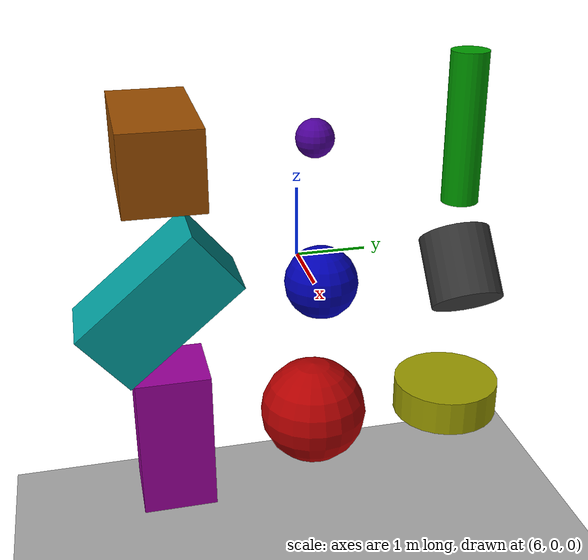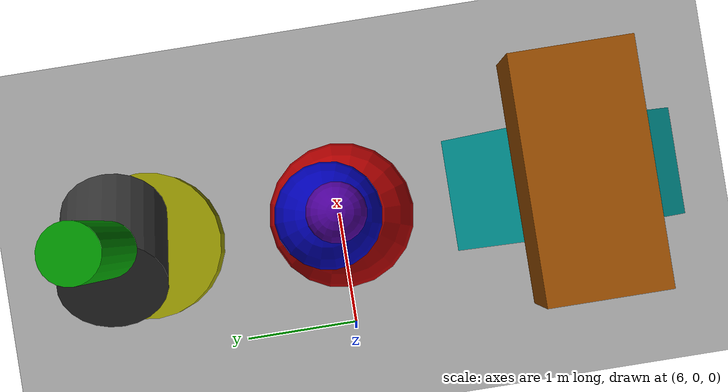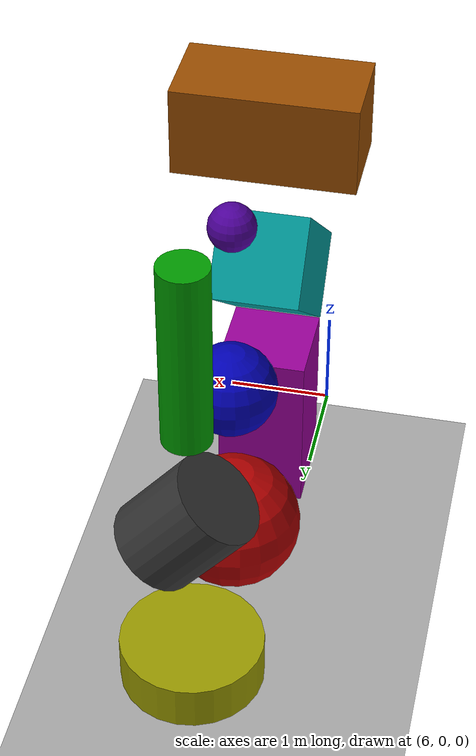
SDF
<sdf version="1.5">
 <world name="default">
  <physics type="ode">
   <real_time_factor>1.0</real_time_factor>
   <real_time_update_rate>125</real_time_update_rate>
  </physics>
  <scene><ambient>0.5 0.5 0.5 1</ambient><background>0 0 0 1</background><shadows>1</shadows></scene>
  <include><uri>model://sun</uri></include>
  <model name="north_model">
   <static>false</static>
   <link name="north_link">
    <pose>7 0 2 0 0 0</pose>
    <collision name="north_collision"><geometry><sphere><radius>0.25</radius></sphere></geometry></collision>
    <visual name="north_visual">
     <geometry><sphere><radius>0.25</radius></sphere></geometry>
     <material>
      <ambient>0.2 0.0 0.4 1</ambient>
      <diffuse>0.3 0.0 0.6 1</diffuse>
      <specular>0.5 0.5 0.5 1</specular>
     </material>
    </visual>
   </link>
  </model>
  <model name="center_model">
   <static>false</static>
   <link name="center_link">
    <pose>7 0.1 0 0 0 0</pose>
    <collision name="center_collision"><geometry><sphere><radius>0.5</radius></sphere></geometry></collision>
    <visual name="center_visual">
     <geometry><sphere><radius>0.5</radius></sphere></geometry>
     <material>
      <ambient>0.0 0.0 0.3 1</ambient>
      <diffuse>0.0 0.0 0.7 1</diffuse>
      <specular>0.5 0.5 0.5 1</specular>
     </material>
    </visual>
   </link>
  </model>
  <model name="south_model">
   <static>false</static>
   <link name="south_link">
    <pose>7 0 -2 0 0 0</pose>
    <collision name="south_collision"><geometry><sphere><radius>0.75</radius></sphere></geometry></collision>
    <visual name="south_visual">
     <geometry><sphere><radius>0.75</radius></sphere></geometry>
     <material>
      <ambient>0.3 0.0 0.0 1</ambient>
      <diffuse>0.7 0.0 0.0 1</diffuse>
      <specular>0.5 0.5 0.5 1</specular>
     </material>
    </visual>
   </link>
  </model>
  <model name="northwest_model">
   <static>false</static>
   <link name="northwest_link">
    <pose>7 2 2 0 0 0</pose>
    <collision name="northwest_collision">
     <geometry><cylinder><radius>0.25</radius><length>2</length></cylinder></geometry>
    </collision>
    <visual name="northwest_visual">
     <geometry><cylinder><radius>0.25</radius><length>2</length></cylinder></geometry>
     <material>
      <ambient>0 0.4 0 1</ambient>
      <diffuse>0 0.6 0 1</diffuse>
      <specular>0.5 0.5 0.5 1</specular>
     </material>
    </visual>
   </link>
  </model>
  <model name="west_model">
   <static>false</static>
   <link name="west_link">
    <pose>7 2.1 0 0 -0.7 0</pose>
    <collision name="west_collision">
     <geometry><cylinder><radius>0.5</radius><length>1</length></cylinder></geometry>
    </collision>
    <visual name="west_visual">
     <geometry><cylinder><radius>0.5</radius><length>1</length></cylinder></geometry>
     <material>
      <ambient>0.1 0.1 0.1 1</ambient>
      <diffuse>0.2 0.2 0.2 1</diffuse>
      <specular>0.5 0.5 0.5 1</specular>
     </material>
    </visual>
   </link>
  </model>
  <model name="southwest_model">
   <static>false</static>
   <link name="southwest_link">
    <pose>7 2 -2 0 0 0</pose>
    <collision name="southeast_collision">
     <geometry><cylinder><radius>0.75</radius><length>0.5</length></cylinder></geometry>
    </collision>
    <visual name="southwest_visual">
     <geometry><cylinder><radius>0.75</radius><length>0.5</length></cylinder></geometry>
     <material>
      <ambient>0.4 0.4 0 1</ambient>
      <diffuse>0.6 0.6 0 1</diffuse>
      <specular>0.5 0.5 0.5 1</specular>
     </material>
    </visual>
   </link>
  </model>
  <model name="northeast_model">
   <static>false</static>
   <link name="northeast_link">
    <pose>7 -2 2 0 0 0</pose>
    <collision name="southeast_collision"><geometry><box><size>2 1 1</size></box></geometry></collision>
    <visual name="northeast_visual">
     <geometry><box><size>2 1 1</size></box></geometry>
     <material>
      <ambient>0.4 0.2 0 1</ambient>
      <diffuse>0.6 0.3 0 1</diffuse>
      <specular>0.5 0.5 0.5 1</specular>
     </material>
    </visual>
   </link>
  </model>
  <model name="east_model">
   <static>false</static>
   <link name="east_link">
    <pose>7 -2.1 0 0.7 0 0</pose>
    <collision name="east_collision"><geometry><box><size>1 2 1</size></box></geometry></collision>
    <visual name="east_visual">
     <geometry><box><size>1 2 1</size></box></geometry>
     <material>
      <ambient>0 0.4 0.4 1</ambient>
      <diffuse>0 0.6 0.6 1</diffuse>
      <specular>0.5 0.5 0.5 1</specular>
     </material>
    </visual>
   </link>
  </model>
  <model name="southeast_model">
   <static>false</static>
   <link name="southeast_link">
    <pose>7 -2 -2 0 0 0</pose>
    <collision name="southeast_collision"><geometry><box><size>1 1 2</size></box></geometry></collision>
    <visual name="southeast_visual">
     <geometry><box><size>1 1 2</size></box></geometry>
     <material>
      <ambient>0.4 0 0.4 1</ambient>
      <diffuse>0.6 0 0.6 1</diffuse>
      <specular>0.5 0.5 0.5 1</specular>
     </material>
    </visual>
   </link>
  </model>
  <model name="floor_model">
   <static>true</static>
   <link name="floor_link">
    <pose>0 0 -4 0 0 0</pose>
    <collision name="floor_collision">
     <geometry><plane><normal>0 0 1</normal><size>100 100</size></plane></geometry>
    </collision>
    <visual name="floor_visual">
     <geometry><plane><normal>0 0 1</normal><size>100 100</size></plane></geometry>
     <material>
      <ambient>0.25 0.25 0.25 1</ambient>
      <diffuse>0.65 0.65 0.65 1</diffuse>
      <specular>0.5 0.5 0.5 1</specular>
     </material>
    </visual>
   </link>
  </model>
 </world>
</sdf>
